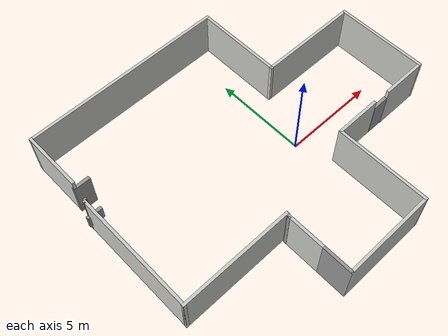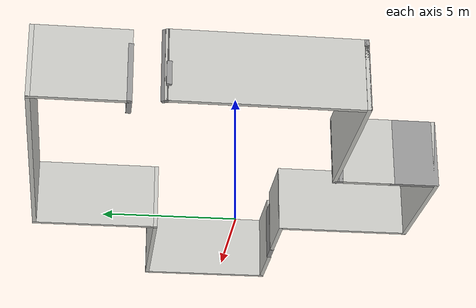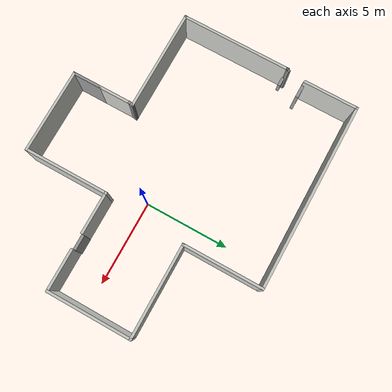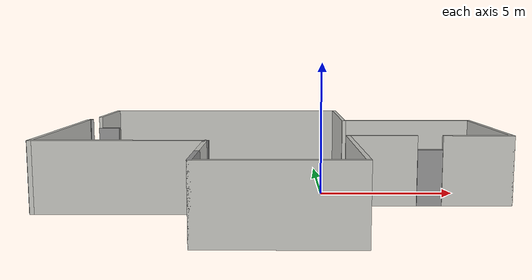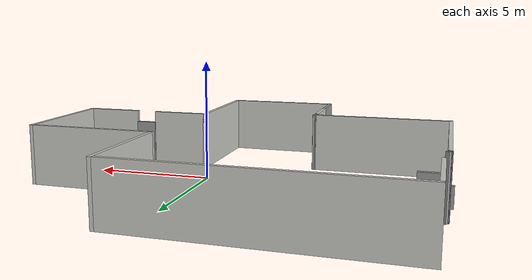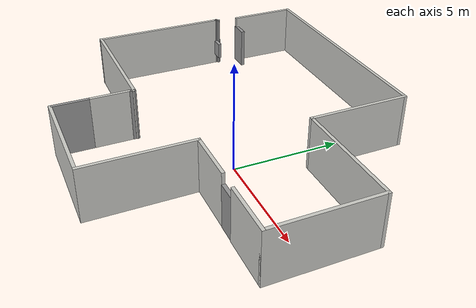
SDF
<?xml version='1.0'?>
<sdf version='1.7'>
  <model name='Untitled'>
    <pose>-1.68283 0.435 0 0 -0 0</pose>
    <link name='Door_0'>
      <collision name='Door_0_Collision'>
        <geometry>
          <box>
            <size>0.9 0.17 2</size>
          </box>
        </geometry>
        <pose>0 0 1 0 -0 0</pose>
      </collision>
      <visual name='Door_0_Visual'>
        <pose>0 0 1 0 -0 0</pose>
        <geometry>
          <box>
            <size>0.9 0.17 2</size>
          </box>
        </geometry>
        <material>
          <script>
            <uri>file://media/materials/scripts/gazebo.material</uri>
            <name>Gazebo/Grey</name>
          </script>
        </material>
      </visual>
      <pose>5.35283 -2.285 0 0 -0 0</pose>
    </link>
    <link name='Door_1'>
      <collision name='Door_1_Collision'>
        <geometry>
          <box>
            <size>0.9 0.17 2</size>
          </box>
        </geometry>
        <pose>0 0 1 0 -0 0</pose>
      </collision>
      <visual name='Door_1_Visual'>
        <pose>0 0 1 0 -0 0</pose>
        <geometry>
          <box>
            <size>0.9 0.17 2</size>
          </box>
        </geometry>
        <material>
          <script>
            <uri>file://media/materials/scripts/gazebo.material</uri>
            <name>Gazebo/Grey</name>
          </script>
        </material>
      </visual>
      <pose>-7.63219 4.021 0 0 -0 0</pose>
    </link>
    <link name='Wall_0'>
      <collision name='Wall_0_Collision'>
        <geometry>
          <box>
            <size>0.16 0.15 2.5</size>
          </box>
        </geometry>
        <pose>0 0 1.25 0 -0 0</pose>
      </collision>
      <visual name='Wall_0_Visual'>
        <pose>0 0 1.25 0 -0 0</pose>
        <geometry>
          <box>
            <size>0.16 0.15 2.5</size>
          </box>
        </geometry>
        <material>
          <script>
            <uri>file://media/materials/scripts/gazebo.material</uri>
            <name>Gazebo/Grey</name>
          </script>
          <ambient>1 1 1 1</ambient>
        </material>
        <meta>
          <layer>0</layer>
        </meta>
      </visual>
      <pose>-2.38217 -3.685 0 0 -0 0</pose>
    </link>
    <link name='Wall_1'>
      <collision name='Wall_1_Collision'>
        <geometry>
          <box>
            <size>2 0.15 2.5</size>
          </box>
        </geometry>
        <pose>0 0 1.25 0 -0 0</pose>
      </collision>
      <visual name='Wall_1_Visual'>
        <pose>0 0 1.25 0 -0 0</pose>
        <geometry>
          <box>
            <size>2 0.15 2.5</size>
          </box>
        </geometry>
        <material>
          <script>
            <uri>file://media/materials/scripts/gazebo.material</uri>
            <name>Gazebo/CeilingTiled</name>
          </script>
          <ambient>1 1 1 1</ambient>
        </material>
        <meta>
          <layer>0</layer>
        </meta>
      </visual>
      <pose>-2.37717 -4.61 0 0 -0 -1.5708</pose>
    </link>
    <link name='Wall_10'>
      <collision name='Wall_10_Collision'>
        <geometry>
          <box>
            <size>4.75 0.15 2.5</size>
          </box>
        </geometry>
        <pose>0 0 1.25 0 -0 0</pose>
      </collision>
      <visual name='Wall_10_Visual'>
        <pose>0 0 1.25 0 -0 0</pose>
        <geometry>
          <box>
            <size>4.75 0.15 2.5</size>
          </box>
        </geometry>
        <material>
          <script>
            <uri>file://media/materials/scripts/gazebo.material</uri>
            <name>Gazebo/CeilingTiled</name>
          </script>
          <ambient>1 1 1 1</ambient>
        </material>
        <meta>
          <layer>0</layer>
        </meta>
      </visual>
      <pose>2.85283 4.835 0 0 -0 1.5708</pose>
    </link>
    <link name='Wall_11'>
      <collision name='Wall_11_Collision'>
        <geometry>
          <box>
            <size>11 0.15 2.5</size>
          </box>
        </geometry>
        <pose>0 0 1.25 0 -0 0</pose>
      </collision>
      <visual name='Wall_11_Visual'>
        <pose>0 0 1.25 0 -0 0</pose>
        <geometry>
          <box>
            <size>11 0.15 2.5</size>
          </box>
        </geometry>
        <material>
          <script>
            <uri>file://media/materials/scripts/gazebo.material</uri>
            <name>Gazebo/CeilingTiled</name>
          </script>
          <ambient>1 1 1 1</ambient>
        </material>
        <meta>
          <layer>0</layer>
        </meta>
      </visual>
      <pose>-2.57217 7.135 0 0 -0 3.14159</pose>
    </link>
    <link name='Wall_12'>
      <collision name='Wall_12_Collision'>
        <geometry>
          <box>
            <size>3.25 0.15 2.5</size>
          </box>
        </geometry>
        <pose>0 0 1.25 0 -0 0</pose>
      </collision>
      <visual name='Wall_12_Visual'>
        <pose>0 0 1.25 0 -0 0</pose>
        <geometry>
          <box>
            <size>3.25 0.15 2.5</size>
          </box>
        </geometry>
        <material>
          <script>
            <uri>file://media/materials/scripts/gazebo.material</uri>
            <name>Gazebo/CeilingTiled</name>
          </script>
          <ambient>1 1 1 1</ambient>
        </material>
        <meta>
          <layer>0</layer>
        </meta>
      </visual>
      <pose>-7.99717 5.585 0 0 -0 -1.5708</pose>
    </link>
    <link name='Wall_14'>
      <collision name='Wall_14_Collision'>
        <geometry>
          <box>
            <size>0.365279 0.15 2.5</size>
          </box>
        </geometry>
        <pose>0 0 1.25 0 -0 0</pose>
      </collision>
      <visual name='Wall_14_Visual'>
        <pose>0 0 1.25 0 -0 0</pose>
        <geometry>
          <box>
            <size>0.365279 0.15 2.5</size>
          </box>
        </geometry>
        <material>
          <script>
            <uri>file://media/materials/scripts/gazebo.material</uri>
            <name>Gazebo/Grey</name>
          </script>
          <ambient>1 1 1 1</ambient>
        </material>
        <meta>
          <layer>0</layer>
        </meta>
      </visual>
      <pose>-2.36127 -3.57854 0 0 -0 1.42257</pose>
    </link>
    <link name='Wall_15'>
      <collision name='Wall_15_Collision'>
        <geometry>
          <box>
            <size>6 0.15 2.5</size>
          </box>
        </geometry>
        <pose>0 0 1.25 0 -0 0</pose>
      </collision>
      <visual name='Wall_15_Visual'>
        <pose>0 0 1.25 0 -0 0</pose>
        <geometry>
          <box>
            <size>6 0.15 2.5</size>
          </box>
        </geometry>
        <material>
          <script>
            <uri>file://media/materials/scripts/gazebo.material</uri>
            <name>Gazebo/CeilingTiled</name>
          </script>
          <ambient>1 1 1 1</ambient>
        </material>
        <meta>
          <layer>0</layer>
        </meta>
      </visual>
      <pose>-5.27038 -3.47208 0 0 -0 3.14159</pose>
    </link>
    <link name='Wall_16'>
      <collision name='Wall_16_Collision'>
        <geometry>
          <box>
            <size>0.16 0.15 2.5</size>
          </box>
        </geometry>
        <pose>0 0 1.25 0 -0 0</pose>
      </collision>
      <visual name='Wall_16_Visual'>
        <pose>0 0 1.25 0 -0 0</pose>
        <geometry>
          <box>
            <size>0.16 0.15 2.5</size>
          </box>
        </geometry>
        <material>
          <script>
            <uri>file://media/materials/scripts/gazebo.material</uri>
            <name>Gazebo/Grey</name>
          </script>
          <ambient>1 1 1 1</ambient>
        </material>
        <meta>
          <layer>0</layer>
        </meta>
      </visual>
      <pose>-8.19038 -3.47208 0 0 -0 0</pose>
    </link>
    <link name='Wall_17'>
      <collision name='Wall_17_Collision'>
        <geometry>
          <box>
            <size>6.5 0.15 2.5</size>
          </box>
        </geometry>
        <pose>0 0 1.25 0 -0 0</pose>
      </collision>
      <visual name='Wall_17_Visual'>
        <pose>0 0 1.25 0 -0 0</pose>
        <geometry>
          <box>
            <size>6.5 0.15 2.5</size>
          </box>
        </geometry>
        <material>
          <script>
            <uri>file://media/materials/scripts/gazebo.material</uri>
            <name>Gazebo/CeilingTiled</name>
          </script>
          <ambient>1 1 1 1</ambient>
        </material>
        <meta>
          <layer>0</layer>
        </meta>
      </visual>
      <pose>-8.18538 -0.297082 0 0 -0 1.5708</pose>
    </link>
    <link name='Wall_18'>
      <collision name='Wall_18_Collision'>
        <geometry>
          <box>
            <size>0.15 0.15 2.5</size>
          </box>
        </geometry>
        <pose>0 0 1.25 0 -0 0</pose>
      </collision>
      <visual name='Wall_18_Visual'>
        <pose>0 0 1.25 0 -0 0</pose>
        <geometry>
          <box>
            <size>0.15 0.15 2.5</size>
          </box>
        </geometry>
        <material>
          <script>
            <uri>file://media/materials/scripts/gazebo.material</uri>
            <name>Gazebo/Grey</name>
          </script>
          <ambient>1 1 1 1</ambient>
        </material>
        <meta>
          <layer>0</layer>
        </meta>
      </visual>
      <pose>-8.18538 2.87792 0 0 -0 0</pose>
    </link>
    <link name='Wall_19'>
      <collision name='Wall_19_Collision'>
        <geometry>
          <box>
            <size>0.15 0.15 2.5</size>
          </box>
        </geometry>
        <pose>0 0 1.25 0 -0 0</pose>
      </collision>
      <visual name='Wall_19_Visual'>
        <pose>0 0 1.25 0 -0 0</pose>
        <geometry>
          <box>
            <size>0.15 0.15 2.5</size>
          </box>
        </geometry>
        <material>
          <script>
            <uri>file://media/materials/scripts/gazebo.material</uri>
            <name>Gazebo/Grey</name>
          </script>
          <ambient>1 1 1 1</ambient>
        </material>
        <meta>
          <layer>0</layer>
        </meta>
      </visual>
      <pose>-8.18538 2.87792 0 0 -0 0</pose>
    </link>
    <link name='Wall_2'>
      <collision name='Wall_2_Collision'>
        <geometry>
          <box>
            <size>1.75 0.15 2.5</size>
          </box>
        </geometry>
        <pose>0 0 1.25 0 -0 0</pose>
      </collision>
      <visual name='Wall_2_Visual'>
        <pose>0 0 1.25 0 -0 0</pose>
        <geometry>
          <box>
            <size>1.75 0.15 2.5</size>
          </box>
        </geometry>
        <material>
          <script>
            <uri>file://media/materials/scripts/gazebo.material</uri>
            <name>Gazebo/Grey</name>
          </script>
          <ambient>1 1 1 1</ambient>
        </material>
        <meta>
          <layer>0</layer>
        </meta>
      </visual>
      <pose>-2.37717 -6.335 0 0 -0 -1.5708</pose>
    </link>
    <link name='Wall_20'>
      <collision name='Wall_20_Collision'>
        <geometry>
          <box>
            <size>0.16 0.15 2.5</size>
          </box>
        </geometry>
        <pose>0 0 1.25 0 -0 0</pose>
      </collision>
      <visual name='Wall_20_Visual'>
        <pose>0 0 1.25 0 -0 0</pose>
        <geometry>
          <box>
            <size>0.16 0.15 2.5</size>
          </box>
        </geometry>
        <material>
          <script>
            <uri>file://media/materials/scripts/gazebo.material</uri>
            <name>Gazebo/Grey</name>
          </script>
          <ambient>1 1 1 1</ambient>
        </material>
        <meta>
          <layer>0</layer>
        </meta>
      </visual>
      <pose>-8.18038 2.87792 0 0 -0 0</pose>
    </link>
    <link name='Wall_21'>
      <collision name='Wall_21_Collision'>
        <geometry>
          <box>
            <size>0.25 0.15 2.5</size>
          </box>
        </geometry>
        <pose>0 0 1.25 0 -0 0</pose>
      </collision>
      <visual name='Wall_21_Visual'>
        <pose>0 0 1.25 0 -0 0</pose>
        <geometry>
          <box>
            <size>0.25 0.15 2.5</size>
          </box>
        </geometry>
        <material>
          <script>
            <uri>file://media/materials/scripts/gazebo.material</uri>
            <name>Gazebo/Grey</name>
          </script>
          <ambient>1 1 1 1</ambient>
        </material>
        <meta>
          <layer>0</layer>
        </meta>
      </visual>
      <pose>-8.15038 2.92122 0 0 -0 1.0472</pose>
    </link>
    <link name='Wall_3'>
      <collision name='Wall_3_Collision'>
        <geometry>
          <box>
            <size>5 0.15 2.5</size>
          </box>
        </geometry>
        <pose>0 0 1.25 0 -0 0</pose>
      </collision>
      <visual name='Wall_3_Visual'>
        <pose>0 0 1.25 0 -0 0</pose>
        <geometry>
          <box>
            <size>5 0.15 2.5</size>
          </box>
        </geometry>
        <material>
          <script>
            <uri>file://media/materials/scripts/gazebo.material</uri>
            <name>Gazebo/CeilingTiled</name>
          </script>
          <ambient>1 1 1 1</ambient>
        </material>
        <meta>
          <layer>0</layer>
        </meta>
      </visual>
      <pose>0.047829 -7.135 0 0 -0 0</pose>
    </link>
    <link name='Wall_4'>
      <collision name='Wall_4_Collision'>
        <geometry>
          <box>
            <size>5 0.15 2.5</size>
          </box>
        </geometry>
        <pose>0 0 1.25 0 -0 0</pose>
      </collision>
      <visual name='Wall_4_Visual'>
        <pose>0 0 1.25 0 -0 0</pose>
        <geometry>
          <box>
            <size>5 0.15 2.5</size>
          </box>
        </geometry>
        <material>
          <script>
            <uri>file://media/materials/scripts/gazebo.material</uri>
            <name>Gazebo/CeilingTiled</name>
          </script>
          <ambient>1 1 1 1</ambient>
        </material>
        <meta>
          <layer>0</layer>
        </meta>
      </visual>
      <pose>2.47283 -4.71 0 0 -0 1.5708</pose>
    </link>
    <link name='Wall_5'>
      <collision name='Wall_5_Collision'>
        <geometry>
          <box>
            <size>2.5 0.15 2.5</size>
          </box>
        </geometry>
        <pose>0 0 1.25 0 -0 0</pose>
      </collision>
      <visual name='Wall_5_Visual'>
        <pose>0 0 1.25 0 -0 0</pose>
        <geometry>
          <box>
            <size>2.5 0.15 2.5</size>
          </box>
        </geometry>
        <material>
          <script>
            <uri>file://media/materials/scripts/gazebo.material</uri>
            <name>Gazebo/CeilingTiled</name>
          </script>
          <ambient>1 1 1 1</ambient>
        </material>
        <meta>
          <layer>0</layer>
        </meta>
      </visual>
      <pose>3.64783 -2.285 0 0 -0 0</pose>
    </link>
    <link name='Wall_7'>
      <collision name='Wall_7_Collision'>
        <geometry>
          <box>
            <size>2.5 0.15 2.5</size>
          </box>
        </geometry>
        <pose>0 0 1.25 0 -0 0</pose>
      </collision>
      <visual name='Wall_7_Visual'>
        <pose>0 0 1.25 0 -0 0</pose>
        <geometry>
          <box>
            <size>2.5 0.15 2.5</size>
          </box>
        </geometry>
        <material>
          <script>
            <uri>file://media/materials/scripts/gazebo.material</uri>
            <name>Gazebo/CeilingTiled</name>
          </script>
          <ambient>1 1 1 1</ambient>
        </material>
        <meta>
          <layer>0</layer>
        </meta>
      </visual>
      <pose>7.02783 -2.315 0 0 -0 0</pose>
    </link>
    <link name='Wall_8'>
      <collision name='Wall_8_Collision'>
        <geometry>
          <box>
            <size>5 0.15 2.5</size>
          </box>
        </geometry>
        <pose>0 0 1.25 0 -0 0</pose>
      </collision>
      <visual name='Wall_8_Visual'>
        <pose>0 0 1.25 0 -0 0</pose>
        <geometry>
          <box>
            <size>5 0.15 2.5</size>
          </box>
        </geometry>
        <material>
          <script>
            <uri>file://media/materials/scripts/gazebo.material</uri>
            <name>Gazebo/CeilingTiled</name>
          </script>
          <ambient>1 1 1 1</ambient>
        </material>
        <meta>
          <layer>0</layer>
        </meta>
      </visual>
      <pose>8.20283 0.11 0 0 -0 1.5708</pose>
    </link>
    <link name='Wall_9'>
      <collision name='Wall_9_Collision'>
        <geometry>
          <box>
            <size>5.5 0.15 2.5</size>
          </box>
        </geometry>
        <pose>0 0 1.25 0 -0 0</pose>
      </collision>
      <visual name='Wall_9_Visual'>
        <pose>0 0 1.25 0 -0 0</pose>
        <geometry>
          <box>
            <size>5.5 0.15 2.5</size>
          </box>
        </geometry>
        <material>
          <script>
            <uri>file://media/materials/scripts/gazebo.material</uri>
            <name>Gazebo/CeilingTiled</name>
          </script>
          <ambient>1 1 1 1</ambient>
        </material>
        <meta>
          <layer>0</layer>
        </meta>
      </visual>
      <pose>5.52783 2.535 0 0 -0 3.14159</pose>
    </link>
    <link name='Window_0'>
      <collision name='Window_0_Collision'>
        <geometry>
          <box>
            <size>0.8 0.17 0.8</size>
          </box>
        </geometry>
        <pose>0 0 0.4 0 -0 0</pose>
      </collision>
      <visual name='Window_0_Visual'>
        <pose>0 0 0.4 0 -0 0</pose>
        <geometry>
          <box>
            <size>0.8 0.17 0.8</size>
          </box>
        </geometry>
        <material>
          <script>
            <uri>file://media/materials/scripts/gazebo.material</uri>
            <name>Gazebo/Grey</name>
          </script>
        </material>
      </visual>
      <pose>-7.98398 2.82492 0.5 0 -0 0</pose>
    </link>
    <static>1</static>
  </model>
</sdf>
